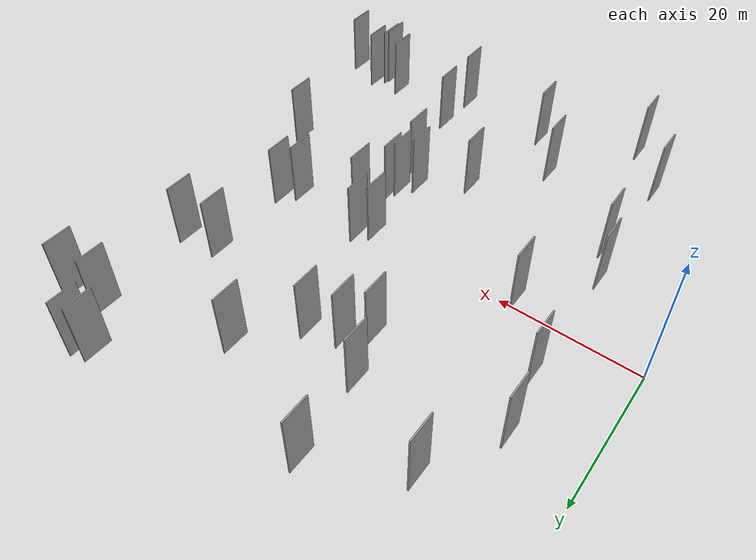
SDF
<sdf version="1.6">
 <world name="default">
  <scene>
   <sky><clouds><speed>12</speed></clouds></sky>
   <ambient>0.4 0.4 0.4 1</ambient>
   <background>0.7 0.7 0.7 1</background>
   <shadows>1</shadows>
  </scene>
  <gravity>0 0 -9.8066</gravity>
  <magnetic_field>6e-06 2.3e-05 -4.2e-05</magnetic_field>
  <physics default="0" name="default_physics" type="ode">
   <ode>
    <solver>
     <type>quick</type>
     <iters>10</iters>
     <sor>1.0</sor>
     <use_dynamic_moi_rescaling>0</use_dynamic_moi_rescaling>
    </solver>
    <constraints>
     <cfm>0</cfm>
     <erp>0.2</erp>
     <contact_max_correcting_vel>100</contact_max_correcting_vel>
     <contact_surface_layer>0.001</contact_surface_layer>
    </constraints>
   </ode>
   <max_step_size>0.004</max_step_size>
   <real_time_factor>1</real_time_factor>
   <real_time_update_rate>250</real_time_update_rate>
  </physics>
  <light name="sun" type="directional">
   <pose>0 0 10 0 0 0</pose>
   <diffuse>0.8 0.8 0.8 1</diffuse>
   <specular>0.2 0.2 0.2 1</specular>
   <attenuation>
    <range>1000</range>
    <constant>0.9</constant>
    <linear>0.01</linear>
    <quadratic>0.001</quadratic>
   </attenuation>
   <direction>-0.5 0.1 -0.9</direction>
  </light>
  <model name="grey_wall_1">
   <static>1</static>
   <pose>36.6619 18.0151 0.0 0.000000 0.000000 1.570796</pose>
   <link name="link">
    <pose>0 0 5.00 0 0 0</pose>
    <collision name="collision"><geometry><box><size>4.00 0.2 10.00</size></box></geometry></collision>
    <visual name="visual">
     <cast_shadows>0</cast_shadows>
     <geometry><box><size>4.00 0.2 10.00</size></box></geometry>
     <material>
      <script>
       <uri>model://grey_wall/materials/scripts</uri>
       <uri>model://grey_wall/materials/textures</uri>
       <name>vrc/grey_wall</name>
      </script>
     </material>
    </visual>
   </link>
  </model>
  <model name="grey_wall_2">
   <static>1</static>
   <pose>55.3624 36.1691 0.0 0.000000 0.000000 1.570796</pose>
   <link name="link">
    <pose>0 0 5.00 0 0 0</pose>
    <collision name="collision"><geometry><box><size>4.00 0.2 10.00</size></box></geometry></collision>
    <visual name="visual">
     <cast_shadows>0</cast_shadows>
     <geometry><box><size>4.00 0.2 10.00</size></box></geometry>
     <material>
      <script>
       <uri>model://grey_wall/materials/scripts</uri>
       <uri>model://grey_wall/materials/textures</uri>
       <name>vrc/grey_wall</name>
      </script>
     </material>
    </visual>
   </link>
  </model>
  <model name="grey_wall_3">
   <static>1</static>
   <pose>43.7757 -15.6567 0.0 0.000000 0.000000 1.570796</pose>
   <link name="link">
    <pose>0 0 5.00 0 0 0</pose>
    <collision name="collision"><geometry><box><size>4.00 0.2 10.00</size></box></geometry></collision>
    <visual name="visual">
     <cast_shadows>0</cast_shadows>
     <geometry><box><size>4.00 0.2 10.00</size></box></geometry>
     <material>
      <script>
       <uri>model://grey_wall/materials/scripts</uri>
       <uri>model://grey_wall/materials/textures</uri>
       <name>vrc/grey_wall</name>
      </script>
     </material>
    </visual>
   </link>
  </model>
  <model name="grey_wall_4">
   <static>1</static>
   <pose>62.9942 -11.3751 0.0 0.000000 0.000000 1.570796</pose>
   <link name="link">
    <pose>0 0 5.00 0 0 0</pose>
    <collision name="collision"><geometry><box><size>4.00 0.2 10.00</size></box></geometry></collision>
    <visual name="visual">
     <cast_shadows>0</cast_shadows>
     <geometry><box><size>4.00 0.2 10.00</size></box></geometry>
     <material>
      <script>
       <uri>model://grey_wall/materials/scripts</uri>
       <uri>model://grey_wall/materials/textures</uri>
       <name>vrc/grey_wall</name>
      </script>
     </material>
    </visual>
   </link>
  </model>
  <model name="grey_wall_5">
   <static>1</static>
   <pose>10.9348 -11.1061 0.0 0.000000 0.000000 1.570796</pose>
   <link name="link">
    <pose>0 0 5.00 0 0 0</pose>
    <collision name="collision"><geometry><box><size>4.00 0.2 10.00</size></box></geometry></collision>
    <visual name="visual">
     <cast_shadows>0</cast_shadows>
     <geometry><box><size>4.00 0.2 10.00</size></box></geometry>
     <material>
      <script>
       <uri>model://grey_wall/materials/scripts</uri>
       <uri>model://grey_wall/materials/textures</uri>
       <name>vrc/grey_wall</name>
      </script>
     </material>
    </visual>
   </link>
  </model>
  <model name="grey_wall_6">
   <static>1</static>
   <pose>32.2538 16.5219 0.0 0.000000 0.000000 1.570796</pose>
   <link name="link">
    <pose>0 0 5.00 0 0 0</pose>
    <collision name="collision"><geometry><box><size>4.00 0.2 10.00</size></box></geometry></collision>
    <visual name="visual">
     <cast_shadows>0</cast_shadows>
     <geometry><box><size>4.00 0.2 10.00</size></box></geometry>
     <material>
      <script>
       <uri>model://grey_wall/materials/scripts</uri>
       <uri>model://grey_wall/materials/textures</uri>
       <name>vrc/grey_wall</name>
      </script>
     </material>
    </visual>
   </link>
  </model>
  <model name="grey_wall_7">
   <static>1</static>
   <pose>62.9311 -31.2098 0.0 0.000000 0.000000 1.570796</pose>
   <link name="link">
    <pose>0 0 5.00 0 0 0</pose>
    <collision name="collision"><geometry><box><size>4.00 0.2 10.00</size></box></geometry></collision>
    <visual name="visual">
     <cast_shadows>0</cast_shadows>
     <geometry><box><size>4.00 0.2 10.00</size></box></geometry>
     <material>
      <script>
       <uri>model://grey_wall/materials/scripts</uri>
       <uri>model://grey_wall/materials/textures</uri>
       <name>vrc/grey_wall</name>
      </script>
     </material>
    </visual>
   </link>
  </model>
  <model name="grey_wall_8">
   <static>1</static>
   <pose>61.4429 -33.0140 0.0 0.000000 0.000000 1.570796</pose>
   <link name="link">
    <pose>0 0 5.00 0 0 0</pose>
    <collision name="collision"><geometry><box><size>4.00 0.2 10.00</size></box></geometry></collision>
    <visual name="visual">
     <cast_shadows>0</cast_shadows>
     <geometry><box><size>4.00 0.2 10.00</size></box></geometry>
     <material>
      <script>
       <uri>model://grey_wall/materials/scripts</uri>
       <uri>model://grey_wall/materials/textures</uri>
       <name>vrc/grey_wall</name>
      </script>
     </material>
    </visual>
   </link>
  </model>
  <model name="grey_wall_9">
   <static>1</static>
   <pose>17.4515 -39.3965 0.0 0.000000 0.000000 1.570796</pose>
   <link name="link">
    <pose>0 0 5.00 0 0 0</pose>
    <collision name="collision"><geometry><box><size>4.00 0.2 10.00</size></box></geometry></collision>
    <visual name="visual">
     <cast_shadows>0</cast_shadows>
     <geometry><box><size>4.00 0.2 10.00</size></box></geometry>
     <material>
      <script>
       <uri>model://grey_wall/materials/scripts</uri>
       <uri>model://grey_wall/materials/textures</uri>
       <name>vrc/grey_wall</name>
      </script>
     </material>
    </visual>
   </link>
  </model>
  <model name="grey_wall_10">
   <static>1</static>
   <pose>29.4541 13.9202 0.0 0.000000 0.000000 1.570796</pose>
   <link name="link">
    <pose>0 0 5.00 0 0 0</pose>
    <collision name="collision"><geometry><box><size>4.00 0.2 10.00</size></box></geometry></collision>
    <visual name="visual">
     <cast_shadows>0</cast_shadows>
     <geometry><box><size>4.00 0.2 10.00</size></box></geometry>
     <material>
      <script>
       <uri>model://grey_wall/materials/scripts</uri>
       <uri>model://grey_wall/materials/textures</uri>
       <name>vrc/grey_wall</name>
      </script>
     </material>
    </visual>
   </link>
  </model>
  <model name="grey_wall_11">
   <static>1</static>
   <pose>55.9009 1.5364 0.0 0.000000 0.000000 1.570796</pose>
   <link name="link">
    <pose>0 0 5.00 0 0 0</pose>
    <collision name="collision"><geometry><box><size>4.00 0.2 10.00</size></box></geometry></collision>
    <visual name="visual">
     <cast_shadows>0</cast_shadows>
     <geometry><box><size>4.00 0.2 10.00</size></box></geometry>
     <material>
      <script>
       <uri>model://grey_wall/materials/scripts</uri>
       <uri>model://grey_wall/materials/textures</uri>
       <name>vrc/grey_wall</name>
      </script>
     </material>
    </visual>
   </link>
  </model>
  <model name="grey_wall_12">
   <static>1</static>
   <pose>40.2201 -0.5171 0.0 0.000000 0.000000 1.570796</pose>
   <link name="link">
    <pose>0 0 5.00 0 0 0</pose>
    <collision name="collision"><geometry><box><size>4.00 0.2 10.00</size></box></geometry></collision>
    <visual name="visual">
     <cast_shadows>0</cast_shadows>
     <geometry><box><size>4.00 0.2 10.00</size></box></geometry>
     <material>
      <script>
       <uri>model://grey_wall/materials/scripts</uri>
       <uri>model://grey_wall/materials/textures</uri>
       <name>vrc/grey_wall</name>
      </script>
     </material>
    </visual>
   </link>
  </model>
  <model name="grey_wall_13">
   <static>1</static>
   <pose>65.6684 31.3403 0.0 0.000000 0.000000 1.570796</pose>
   <link name="link">
    <pose>0 0 5.00 0 0 0</pose>
    <collision name="collision"><geometry><box><size>4.00 0.2 10.00</size></box></geometry></collision>
    <visual name="visual">
     <cast_shadows>0</cast_shadows>
     <geometry><box><size>4.00 0.2 10.00</size></box></geometry>
     <material>
      <script>
       <uri>model://grey_wall/materials/scripts</uri>
       <uri>model://grey_wall/materials/textures</uri>
       <name>vrc/grey_wall</name>
      </script>
     </material>
    </visual>
   </link>
  </model>
  <model name="grey_wall_14">
   <static>1</static>
   <pose>42.0989 1.1696 0.0 0.000000 0.000000 1.570796</pose>
   <link name="link">
    <pose>0 0 5.00 0 0 0</pose>
    <collision name="collision"><geometry><box><size>4.00 0.2 10.00</size></box></geometry></collision>
    <visual name="visual">
     <cast_shadows>0</cast_shadows>
     <geometry><box><size>4.00 0.2 10.00</size></box></geometry>
     <material>
      <script>
       <uri>model://grey_wall/materials/scripts</uri>
       <uri>model://grey_wall/materials/textures</uri>
       <name>vrc/grey_wall</name>
      </script>
     </material>
    </visual>
   </link>
  </model>
  <model name="grey_wall_15">
   <static>1</static>
   <pose>26.4778 -26.4797 0.0 0.000000 0.000000 1.570796</pose>
   <link name="link">
    <pose>0 0 5.00 0 0 0</pose>
    <collision name="collision"><geometry><box><size>4.00 0.2 10.00</size></box></geometry></collision>
    <visual name="visual">
     <cast_shadows>0</cast_shadows>
     <geometry><box><size>4.00 0.2 10.00</size></box></geometry>
     <material>
      <script>
       <uri>model://grey_wall/materials/scripts</uri>
       <uri>model://grey_wall/materials/textures</uri>
       <name>vrc/grey_wall</name>
      </script>
     </material>
    </visual>
   </link>
  </model>
  <model name="grey_wall_16">
   <static>1</static>
   <pose>46.3663 -27.9325 0.0 0.000000 0.000000 1.570796</pose>
   <link name="link">
    <pose>0 0 5.00 0 0 0</pose>
    <collision name="collision"><geometry><box><size>4.00 0.2 10.00</size></box></geometry></collision>
    <visual name="visual">
     <cast_shadows>0</cast_shadows>
     <geometry><box><size>4.00 0.2 10.00</size></box></geometry>
     <material>
      <script>
       <uri>model://grey_wall/materials/scripts</uri>
       <uri>model://grey_wall/materials/textures</uri>
       <name>vrc/grey_wall</name>
      </script>
     </material>
    </visual>
   </link>
  </model>
  <model name="grey_wall_17">
   <static>1</static>
   <pose>11.8720 -31.6912 0.0 0.000000 0.000000 1.570796</pose>
   <link name="link">
    <pose>0 0 5.00 0 0 0</pose>
    <collision name="collision"><geometry><box><size>4.00 0.2 10.00</size></box></geometry></collision>
    <visual name="visual">
     <cast_shadows>0</cast_shadows>
     <geometry><box><size>4.00 0.2 10.00</size></box></geometry>
     <material>
      <script>
       <uri>model://grey_wall/materials/scripts</uri>
       <uri>model://grey_wall/materials/textures</uri>
       <name>vrc/grey_wall</name>
      </script>
     </material>
    </visual>
   </link>
  </model>
  <model name="grey_wall_18">
   <static>1</static>
   <pose>57.9816 -31.4442 0.0 0.000000 0.000000 1.570796</pose>
   <link name="link">
    <pose>0 0 5.00 0 0 0</pose>
    <collision name="collision"><geometry><box><size>4.00 0.2 10.00</size></box></geometry></collision>
    <visual name="visual">
     <cast_shadows>0</cast_shadows>
     <geometry><box><size>4.00 0.2 10.00</size></box></geometry>
     <material>
      <script>
       <uri>model://grey_wall/materials/scripts</uri>
       <uri>model://grey_wall/materials/textures</uri>
       <name>vrc/grey_wall</name>
      </script>
     </material>
    </visual>
   </link>
  </model>
  <model name="grey_wall_19">
   <static>1</static>
   <pose>27.1454 20.6249 0.0 0.000000 0.000000 1.570796</pose>
   <link name="link">
    <pose>0 0 5.00 0 0 0</pose>
    <collision name="collision"><geometry><box><size>4.00 0.2 10.00</size></box></geometry></collision>
    <visual name="visual">
     <cast_shadows>0</cast_shadows>
     <geometry><box><size>4.00 0.2 10.00</size></box></geometry>
     <material>
      <script>
       <uri>model://grey_wall/materials/scripts</uri>
       <uri>model://grey_wall/materials/textures</uri>
       <name>vrc/grey_wall</name>
      </script>
     </material>
    </visual>
   </link>
  </model>
  <model name="grey_wall_20">
   <static>1</static>
   <pose>61.1534 -33.8624 0.0 0.000000 0.000000 1.570796</pose>
   <link name="link">
    <pose>0 0 5.00 0 0 0</pose>
    <collision name="collision"><geometry><box><size>4.00 0.2 10.00</size></box></geometry></collision>
    <visual name="visual">
     <cast_shadows>0</cast_shadows>
     <geometry><box><size>4.00 0.2 10.00</size></box></geometry>
     <material>
      <script>
       <uri>model://grey_wall/materials/scripts</uri>
       <uri>model://grey_wall/materials/textures</uri>
       <name>vrc/grey_wall</name>
      </script>
     </material>
    </visual>
   </link>
  </model>
  <model name="grey_wall_21">
   <static>1</static>
   <pose>40.9629 -12.3242 0.0 0.000000 0.000000 1.570796</pose>
   <link name="link">
    <pose>0 0 5.00 0 0 0</pose>
    <collision name="collision"><geometry><box><size>4.00 0.2 10.00</size></box></geometry></collision>
    <visual name="visual">
     <cast_shadows>0</cast_shadows>
     <geometry><box><size>4.00 0.2 10.00</size></box></geometry>
     <material>
      <script>
       <uri>model://grey_wall/materials/scripts</uri>
       <uri>model://grey_wall/materials/textures</uri>
       <name>vrc/grey_wall</name>
      </script>
     </material>
    </visual>
   </link>
  </model>
  <model name="grey_wall_22">
   <static>1</static>
   <pose>14.4910 26.2210 0.0 0.000000 0.000000 1.570796</pose>
   <link name="link">
    <pose>0 0 5.00 0 0 0</pose>
    <collision name="collision"><geometry><box><size>4.00 0.2 10.00</size></box></geometry></collision>
    <visual name="visual">
     <cast_shadows>0</cast_shadows>
     <geometry><box><size>4.00 0.2 10.00</size></box></geometry>
     <material>
      <script>
       <uri>model://grey_wall/materials/scripts</uri>
       <uri>model://grey_wall/materials/textures</uri>
       <name>vrc/grey_wall</name>
      </script>
     </material>
    </visual>
   </link>
  </model>
  <model name="grey_wall_23">
   <static>1</static>
   <pose>42.6903 25.2070 0.0 0.000000 0.000000 1.570796</pose>
   <link name="link">
    <pose>0 0 5.00 0 0 0</pose>
    <collision name="collision"><geometry><box><size>4.00 0.2 10.00</size></box></geometry></collision>
    <visual name="visual">
     <cast_shadows>0</cast_shadows>
     <geometry><box><size>4.00 0.2 10.00</size></box></geometry>
     <material>
      <script>
       <uri>model://grey_wall/materials/scripts</uri>
       <uri>model://grey_wall/materials/textures</uri>
       <name>vrc/grey_wall</name>
      </script>
     </material>
    </visual>
   </link>
  </model>
  <model name="grey_wall_24">
   <static>1</static>
   <pose>25.8785 32.1524 0.0 0.000000 0.000000 1.570796</pose>
   <link name="link">
    <pose>0 0 5.00 0 0 0</pose>
    <collision name="collision"><geometry><box><size>4.00 0.2 10.00</size></box></geometry></collision>
    <visual name="visual">
     <cast_shadows>0</cast_shadows>
     <geometry><box><size>4.00 0.2 10.00</size></box></geometry>
     <material>
      <script>
       <uri>model://grey_wall/materials/scripts</uri>
       <uri>model://grey_wall/materials/textures</uri>
       <name>vrc/grey_wall</name>
      </script>
     </material>
    </visual>
   </link>
  </model>
  <model name="grey_wall_25">
   <static>1</static>
   <pose>10.7951 7.3212 0.0 0.000000 0.000000 1.570796</pose>
   <link name="link">
    <pose>0 0 5.00 0 0 0</pose>
    <collision name="collision"><geometry><box><size>4.00 0.2 10.00</size></box></geometry></collision>
    <visual name="visual">
     <cast_shadows>0</cast_shadows>
     <geometry><box><size>4.00 0.2 10.00</size></box></geometry>
     <material>
      <script>
       <uri>model://grey_wall/materials/scripts</uri>
       <uri>model://grey_wall/materials/textures</uri>
       <name>vrc/grey_wall</name>
      </script>
     </material>
    </visual>
   </link>
  </model>
  <model name="grey_wall_26">
   <static>1</static>
   <pose>46.2379 -35.1601 0.0 0.000000 0.000000 1.570796</pose>
   <link name="link">
    <pose>0 0 5.00 0 0 0</pose>
    <collision name="collision"><geometry><box><size>4.00 0.2 10.00</size></box></geometry></collision>
    <visual name="visual">
     <cast_shadows>0</cast_shadows>
     <geometry><box><size>4.00 0.2 10.00</size></box></geometry>
     <material>
      <script>
       <uri>model://grey_wall/materials/scripts</uri>
       <uri>model://grey_wall/materials/textures</uri>
       <name>vrc/grey_wall</name>
      </script>
     </material>
    </visual>
   </link>
  </model>
  <model name="grey_wall_27">
   <static>1</static>
   <pose>57.4898 36.6878 0.0 0.000000 0.000000 1.570796</pose>
   <link name="link">
    <pose>0 0 5.00 0 0 0</pose>
    <collision name="collision"><geometry><box><size>4.00 0.2 10.00</size></box></geometry></collision>
    <visual name="visual">
     <cast_shadows>0</cast_shadows>
     <geometry><box><size>4.00 0.2 10.00</size></box></geometry>
     <material>
      <script>
       <uri>model://grey_wall/materials/scripts</uri>
       <uri>model://grey_wall/materials/textures</uri>
       <name>vrc/grey_wall</name>
      </script>
     </material>
    </visual>
   </link>
  </model>
  <model name="grey_wall_28">
   <static>1</static>
   <pose>53.8329 -0.6480 0.0 0.000000 0.000000 1.570796</pose>
   <link name="link">
    <pose>0 0 5.00 0 0 0</pose>
    <collision name="collision"><geometry><box><size>4.00 0.2 10.00</size></box></geometry></collision>
    <visual name="visual">
     <cast_shadows>0</cast_shadows>
     <geometry><box><size>4.00 0.2 10.00</size></box></geometry>
     <material>
      <script>
       <uri>model://grey_wall/materials/scripts</uri>
       <uri>model://grey_wall/materials/textures</uri>
       <name>vrc/grey_wall</name>
      </script>
     </material>
    </visual>
   </link>
  </model>
  <model name="grey_wall_29">
   <static>1</static>
   <pose>42.7277 -10.1764 0.0 0.000000 0.000000 1.570796</pose>
   <link name="link">
    <pose>0 0 5.00 0 0 0</pose>
    <collision name="collision"><geometry><box><size>4.00 0.2 10.00</size></box></geometry></collision>
    <visual name="visual">
     <cast_shadows>0</cast_shadows>
     <geometry><box><size>4.00 0.2 10.00</size></box></geometry>
     <material>
      <script>
       <uri>model://grey_wall/materials/scripts</uri>
       <uri>model://grey_wall/materials/textures</uri>
       <name>vrc/grey_wall</name>
      </script>
     </material>
    </visual>
   </link>
  </model>
  <model name="grey_wall_30">
   <static>1</static>
   <pose>12.9200 -16.6532 0.0 0.000000 0.000000 1.570796</pose>
   <link name="link">
    <pose>0 0 5.00 0 0 0</pose>
    <collision name="collision"><geometry><box><size>4.00 0.2 10.00</size></box></geometry></collision>
    <visual name="visual">
     <cast_shadows>0</cast_shadows>
     <geometry><box><size>4.00 0.2 10.00</size></box></geometry>
     <material>
      <script>
       <uri>model://grey_wall/materials/scripts</uri>
       <uri>model://grey_wall/materials/textures</uri>
       <name>vrc/grey_wall</name>
      </script>
     </material>
    </visual>
   </link>
  </model>
  <model name="grey_wall_31">
   <static>1</static>
   <pose>45.6743 -4.0563 0.0 0.000000 0.000000 1.570796</pose>
   <link name="link">
    <pose>0 0 5.00 0 0 0</pose>
    <collision name="collision"><geometry><box><size>4.00 0.2 10.00</size></box></geometry></collision>
    <visual name="visual">
     <cast_shadows>0</cast_shadows>
     <geometry><box><size>4.00 0.2 10.00</size></box></geometry>
     <material>
      <script>
       <uri>model://grey_wall/materials/scripts</uri>
       <uri>model://grey_wall/materials/textures</uri>
       <name>vrc/grey_wall</name>
      </script>
     </material>
    </visual>
   </link>
  </model>
  <model name="grey_wall_32">
   <static>1</static>
   <pose>61.0808 15.4924 0.0 0.000000 0.000000 1.570796</pose>
   <link name="link">
    <pose>0 0 5.00 0 0 0</pose>
    <collision name="collision"><geometry><box><size>4.00 0.2 10.00</size></box></geometry></collision>
    <visual name="visual">
     <cast_shadows>0</cast_shadows>
     <geometry><box><size>4.00 0.2 10.00</size></box></geometry>
     <material>
      <script>
       <uri>model://grey_wall/materials/scripts</uri>
       <uri>model://grey_wall/materials/textures</uri>
       <name>vrc/grey_wall</name>
      </script>
     </material>
    </visual>
   </link>
  </model>
  <model name="grey_wall_33">
   <static>1</static>
   <pose>43.4532 -8.7534 0.0 0.000000 0.000000 1.570796</pose>
   <link name="link">
    <pose>0 0 5.00 0 0 0</pose>
    <collision name="collision"><geometry><box><size>4.00 0.2 10.00</size></box></geometry></collision>
    <visual name="visual">
     <cast_shadows>0</cast_shadows>
     <geometry><box><size>4.00 0.2 10.00</size></box></geometry>
     <material>
      <script>
       <uri>model://grey_wall/materials/scripts</uri>
       <uri>model://grey_wall/materials/textures</uri>
       <name>vrc/grey_wall</name>
      </script>
     </material>
    </visual>
   </link>
  </model>
  <model name="grey_wall_34">
   <static>1</static>
   <pose>34.6157 -16.8849 0.0 0.000000 0.000000 1.570796</pose>
   <link name="link">
    <pose>0 0 5.00 0 0 0</pose>
    <collision name="collision"><geometry><box><size>4.00 0.2 10.00</size></box></geometry></collision>
    <visual name="visual">
     <cast_shadows>0</cast_shadows>
     <geometry><box><size>4.00 0.2 10.00</size></box></geometry>
     <material>
      <script>
       <uri>model://grey_wall/materials/scripts</uri>
       <uri>model://grey_wall/materials/textures</uri>
       <name>vrc/grey_wall</name>
      </script>
     </material>
    </visual>
   </link>
  </model>
  <model name="grey_wall_35">
   <static>1</static>
   <pose>68.2952 -33.5049 0.0 0.000000 0.000000 1.570796</pose>
   <link name="link">
    <pose>0 0 5.00 0 0 0</pose>
    <collision name="collision"><geometry><box><size>4.00 0.2 10.00</size></box></geometry></collision>
    <visual name="visual">
     <cast_shadows>0</cast_shadows>
     <geometry><box><size>4.00 0.2 10.00</size></box></geometry>
     <material>
      <script>
       <uri>model://grey_wall/materials/scripts</uri>
       <uri>model://grey_wall/materials/textures</uri>
       <name>vrc/grey_wall</name>
      </script>
     </material>
    </visual>
   </link>
  </model>
  <model name="grey_wall_36">
   <static>1</static>
   <pose>31.6762 -33.4752 0.0 0.000000 0.000000 1.570796</pose>
   <link name="link">
    <pose>0 0 5.00 0 0 0</pose>
    <collision name="collision"><geometry><box><size>4.00 0.2 10.00</size></box></geometry></collision>
    <visual name="visual">
     <cast_shadows>0</cast_shadows>
     <geometry><box><size>4.00 0.2 10.00</size></box></geometry>
     <material>
      <script>
       <uri>model://grey_wall/materials/scripts</uri>
       <uri>model://grey_wall/materials/textures</uri>
       <name>vrc/grey_wall</name>
      </script>
     </material>
    </visual>
   </link>
  </model>
  <model name="grey_wall_37">
   <static>1</static>
   <pose>60.1386 30.7122 0.0 0.000000 0.000000 1.570796</pose>
   <link name="link">
    <pose>0 0 5.00 0 0 0</pose>
    <collision name="collision"><geometry><box><size>4.00 0.2 10.00</size></box></geometry></collision>
    <visual name="visual">
     <cast_shadows>0</cast_shadows>
     <geometry><box><size>4.00 0.2 10.00</size></box></geometry>
     <material>
      <script>
       <uri>model://grey_wall/materials/scripts</uri>
       <uri>model://grey_wall/materials/textures</uri>
       <name>vrc/grey_wall</name>
      </script>
     </material>
    </visual>
   </link>
  </model>
  <model name="grey_wall_38">
   <static>1</static>
   <pose>18.1590 -1.6911 0.0 0.000000 0.000000 1.570796</pose>
   <link name="link">
    <pose>0 0 5.00 0 0 0</pose>
    <collision name="collision"><geometry><box><size>4.00 0.2 10.00</size></box></geometry></collision>
    <visual name="visual">
     <cast_shadows>0</cast_shadows>
     <geometry><box><size>4.00 0.2 10.00</size></box></geometry>
     <material>
      <script>
       <uri>model://grey_wall/materials/scripts</uri>
       <uri>model://grey_wall/materials/textures</uri>
       <name>vrc/grey_wall</name>
      </script>
     </material>
    </visual>
   </link>
  </model>
  <model name="grey_wall_39">
   <static>1</static>
   <pose>9.0937 16.1116 0.0 0.000000 0.000000 1.570796</pose>
   <link name="link">
    <pose>0 0 5.00 0 0 0</pose>
    <collision name="collision"><geometry><box><size>4.00 0.2 10.00</size></box></geometry></collision>
    <visual name="visual">
     <cast_shadows>0</cast_shadows>
     <geometry><box><size>4.00 0.2 10.00</size></box></geometry>
     <material>
      <script>
       <uri>model://grey_wall/materials/scripts</uri>
       <uri>model://grey_wall/materials/textures</uri>
       <name>vrc/grey_wall</name>
      </script>
     </material>
    </visual>
   </link>
  </model>
  <model name="grey_wall_40">
   <static>1</static>
   <pose>55.5137 14.8053 0.0 0.000000 0.000000 1.570796</pose>
   <link name="link">
    <pose>0 0 5.00 0 0 0</pose>
    <collision name="collision"><geometry><box><size>4.00 0.2 10.00</size></box></geometry></collision>
    <visual name="visual">
     <cast_shadows>0</cast_shadows>
     <geometry><box><size>4.00 0.2 10.00</size></box></geometry>
     <material>
      <script>
       <uri>model://grey_wall/materials/scripts</uri>
       <uri>model://grey_wall/materials/textures</uri>
       <name>vrc/grey_wall</name>
      </script>
     </material>
    </visual>
   </link>
  </model>
 </world>
</sdf>
